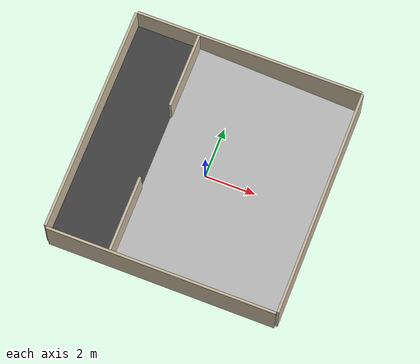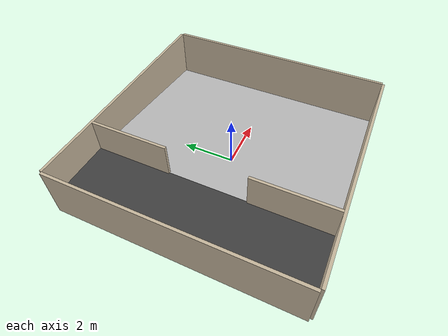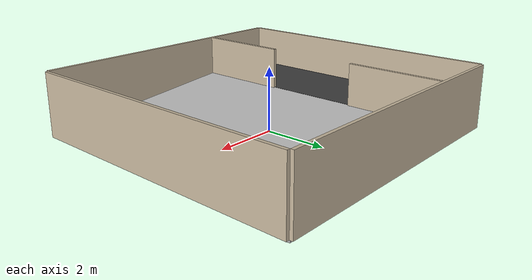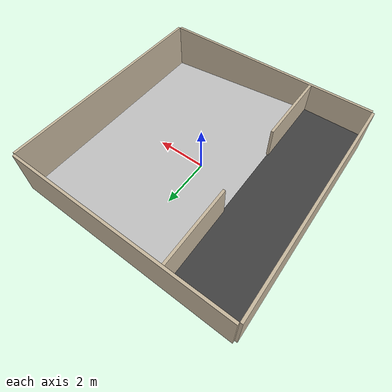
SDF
<sdf version="1.7">
 <world name="CyberWaster_Sim1">
  <plugin filename="libignition-gazebo-physics-system.so" name="ignition::gazebo::systems::Physics"/>
  <plugin filename="libignition-gazebo-scene-broadcaster-system.so" name="ignition::gazebo::systems::SceneBroadcaster"/>
  <light type="directional" name="sun">
   <pose>0 0 10 0 0 0</pose>
   <diffuse>1 1 1 1</diffuse>
   <direction>-0.5 0.1 -0.9</direction>
  </light>
  <model name="outside_sloped_floor">
   <static>true</static>
   <pose>1.22 0 0.3 0 0.1 0</pose>
   <link name="link">
    <collision name="collision"><geometry><box><size>6.55 9.0 0.12</size></box></geometry></collision>
    <visual name="visual">
     <geometry><box><size>6.55 9.0 0.12</size></box></geometry>
     <material>
      <ambient>0.75 0.75 0.75 1</ambient>
      <diffuse>0.75 0.75 0.75 1</diffuse>
      <specular>0.05 0.05 0.05 1</specular>
     </material>
    </visual>
   </link>
  </model>
  <model name="garage_floor">
   <static>true</static>
   <pose>-3.25 0 0.63 0 0 0</pose>
   <link name="link">
    <collision name="collision"><geometry><box><size>2.5 9.0 0.12</size></box></geometry></collision>
    <visual name="visual">
     <geometry><box><size>2.5 9.0 0.12</size></box></geometry>
     <material>
      <ambient>0.25 0.25 0.25 1</ambient>
      <diffuse>0.25 0.25 0.25 1</diffuse>
      <specular>0.03 0.03 0.03 1</specular>
     </material>
    </visual>
   </link>
  </model>
  <model name="map_walls">
   <static>true</static>
   <link name="east_wall">
    <pose>0 4.55 1 0 0 0</pose>
    <collision name="collision"><geometry><box><size>9 0.1 2</size></box></geometry></collision>
    <visual name="visual">
     <geometry><box><size>9 0.1 2</size></box></geometry>
     <material>
      <ambient>0.78 0.72 0.62 1</ambient>
      <diffuse>0.78 0.72 0.62 1</diffuse>
      <specular>0.05 0.05 0.05 1</specular>
     </material>
    </visual>
   </link>
   <link name="west_wall">
    <pose>0 -4.55 1 0 0 0</pose>
    <collision name="collision"><geometry><box><size>9 0.1 2</size></box></geometry></collision>
    <visual name="visual">
     <geometry><box><size>9 0.1 2</size></box></geometry>
     <material>
      <ambient>0.78 0.72 0.62 1</ambient>
      <diffuse>0.78 0.72 0.62 1</diffuse>
      <specular>0.05 0.05 0.05 1</specular>
     </material>
    </visual>
   </link>
   <link name="north_wall">
    <pose>4.55 0 1 0 0 0</pose>
    <collision name="collision"><geometry><box><size>0.1 9 2</size></box></geometry></collision>
    <visual name="visual">
     <geometry><box><size>0.1 9 2</size></box></geometry>
     <material>
      <ambient>0.78 0.72 0.62 1</ambient>
      <diffuse>0.78 0.72 0.62 1</diffuse>
      <specular>0.05 0.05 0.05 1</specular>
     </material>
    </visual>
   </link>
   <link name="south_wall">
    <pose>-4.55 0 1 0 0 0</pose>
    <collision name="collision"><geometry><box><size>0.1 9 2</size></box></geometry></collision>
    <visual name="visual">
     <geometry><box><size>0.1 9 2</size></box></geometry>
     <material>
      <ambient>0.78 0.72 0.62 1</ambient>
      <diffuse>0.78 0.72 0.62 1</diffuse>
      <specular>0.05 0.05 0.05 1</specular>
     </material>
    </visual>
   </link>
  </model>
  <model name="garage_gate">
   <static>true</static>
   <link name="right_gate">
    <pose>-2.0 -3.0 1 0 0 0</pose>
    <collision name="collision"><geometry><box><size>0.1 3.0 2</size></box></geometry></collision>
    <visual name="visual">
     <geometry><box><size>0.1 3.0 2</size></box></geometry>
     <material>
      <ambient>0.78 0.72 0.62 1</ambient>
      <diffuse>0.78 0.72 0.62 1</diffuse>
      <specular>0.05 0.05 0.05 1</specular>
     </material>
    </visual>
   </link>
   <link name="left_gate">
    <pose>-2.0 3.0 1 0 0 0</pose>
    <collision name="collision"><geometry><box><size>0.1 3.0 2</size></box></geometry></collision>
    <visual name="visual">
     <geometry><box><size>0.1 3.0 2</size></box></geometry>
     <material>
      <ambient>0.78 0.72 0.62 1</ambient>
      <diffuse>0.78 0.72 0.62 1</diffuse>
      <specular>0.05 0.05 0.05 1</specular>
     </material>
    </visual>
   </link>
  </model>
 </world>
</sdf>
